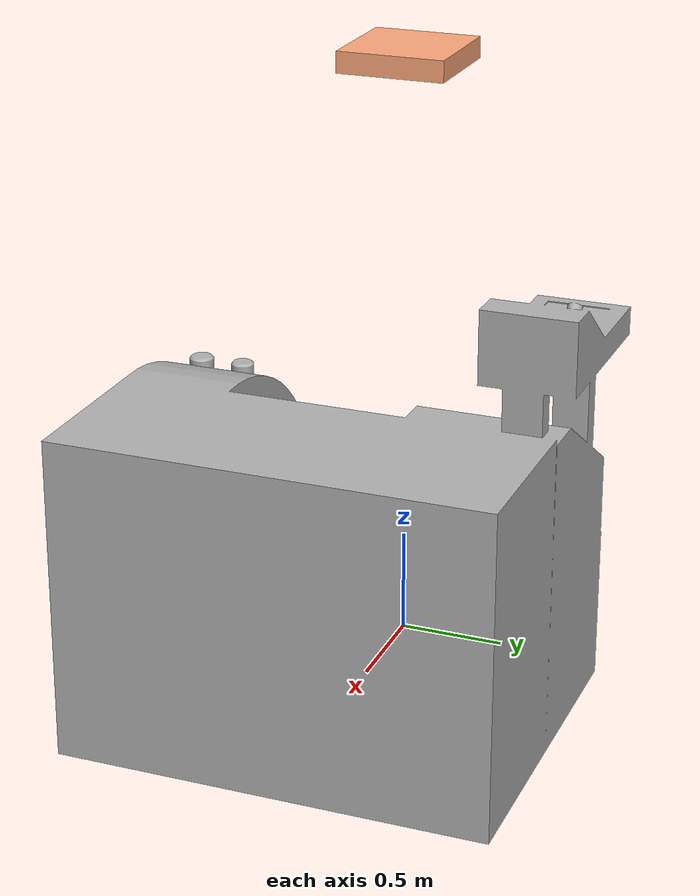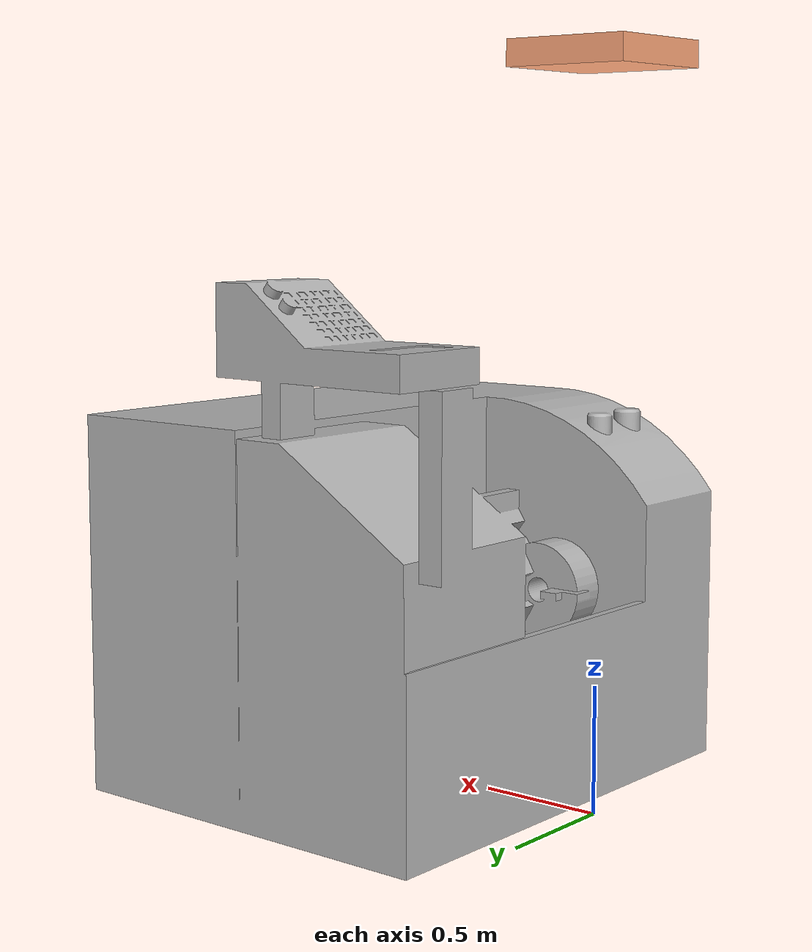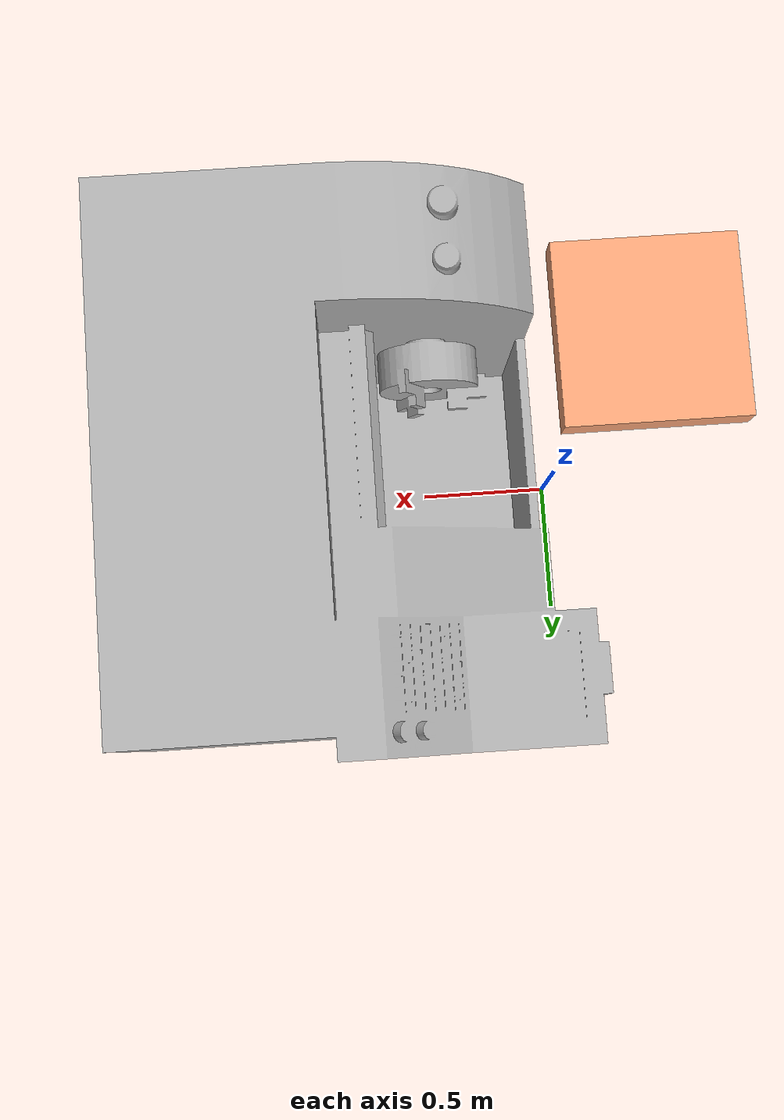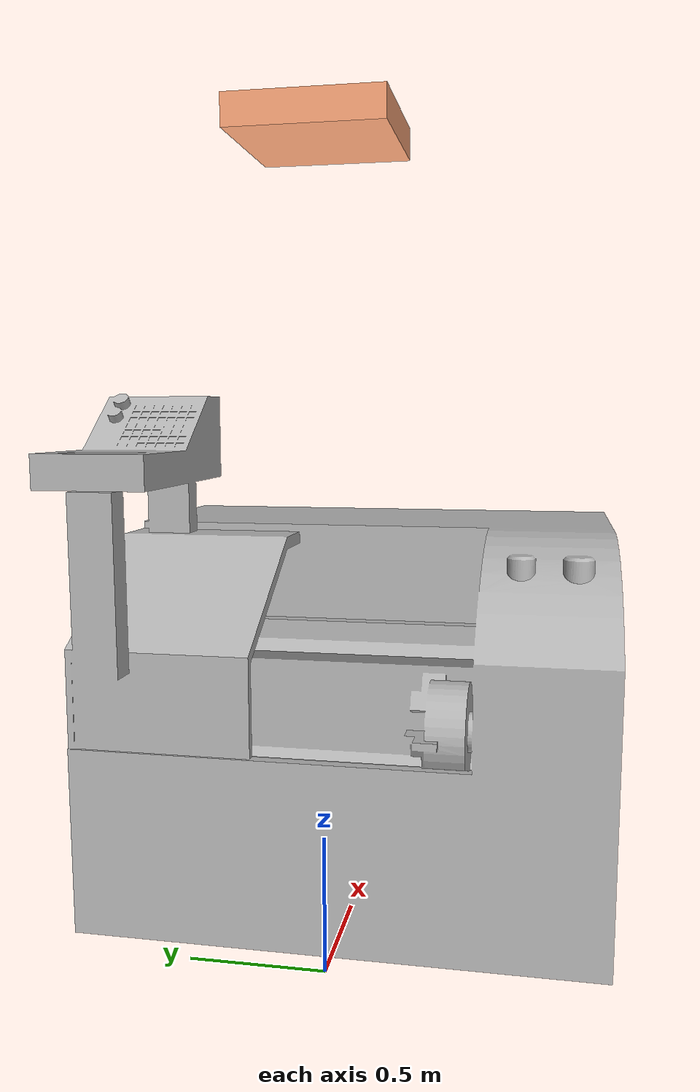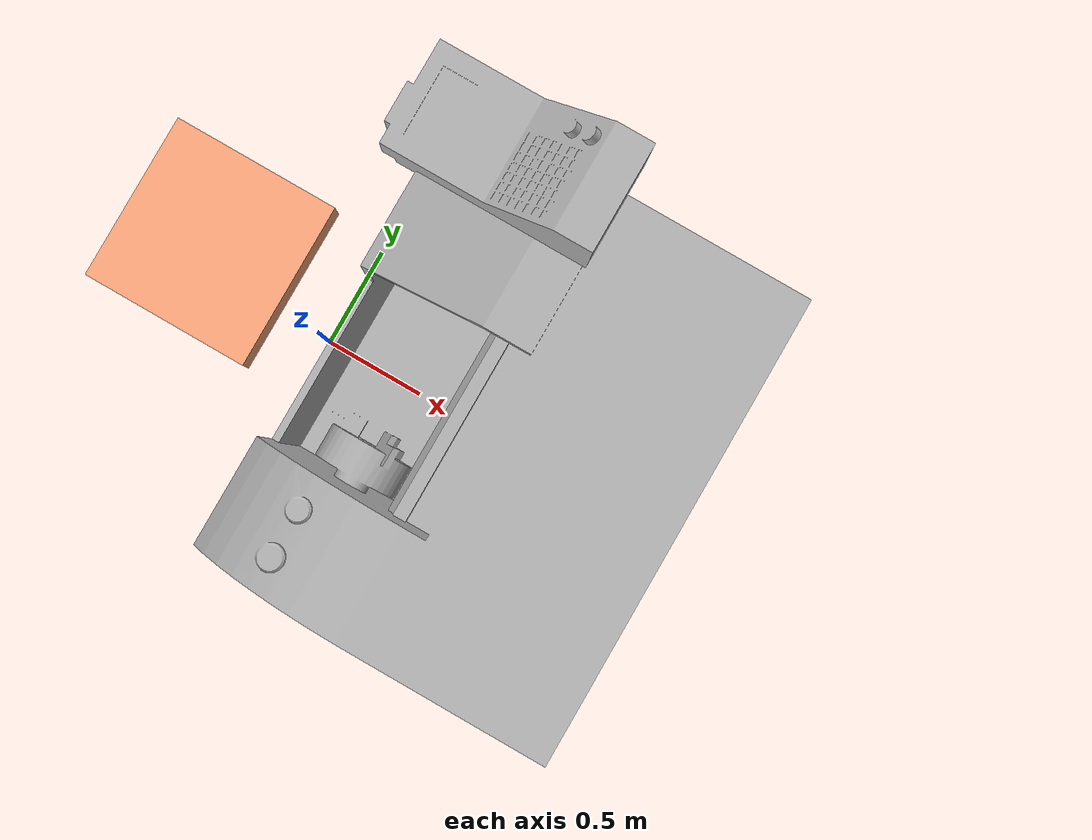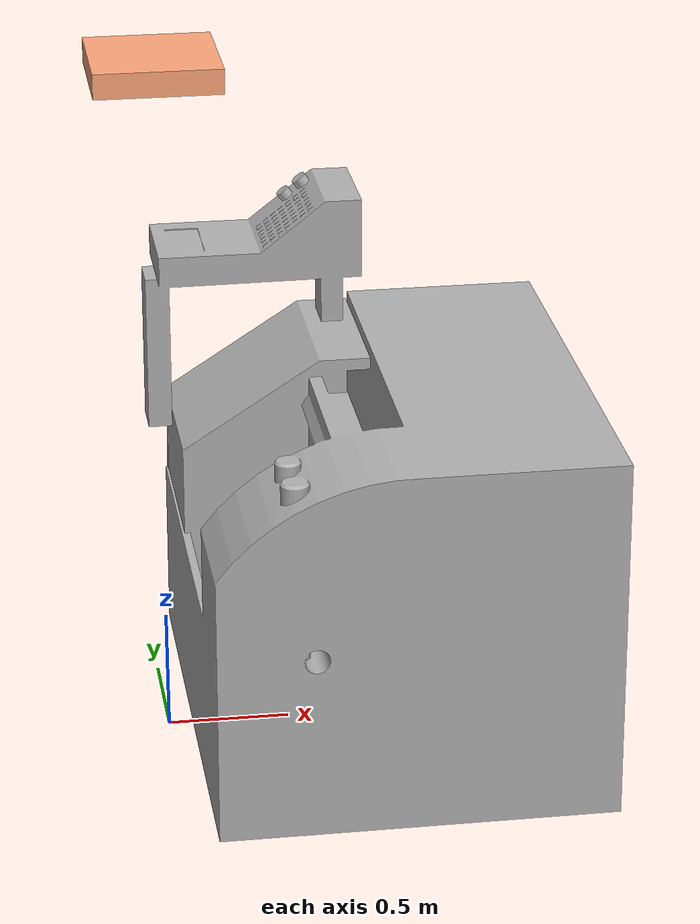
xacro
<?xml version="1.0" ?>
<robot name="NIST_Robot" xmlns:xacro="http://ros.org/wiki/xacro">

	<!-- parameters -->
	<xacro:property name="platform_thickness" value="0.1"/>

	<!-- color definitions -->
  <material name="blue">
    <color rgba="0 0 1 1"/>
  </material>
  <material name="yellow">
    <color rgba="1 1 0 1"/>
  </material>
  <material name="orange">
    <color rgba="1 0.66 0.48 1"/>
  </material>
  <material name="red">
    <color rgba="1 0 0 1"/>
  </material>
  <material name="light_blue">
    <color rgba="0.78 0.94 0.965 1"/>
  </material>
  <material name="light_gray">
    <color rgba="0.7 0.7 0.7 1"/>
  </material>

  <!-- robot definitions, also defined in robot urdf -->
	<link name="base_link"/>

	<!-- link definitions -->
	<link name="world_frame"/>
	<link name="robot_platform_link">
		<visual>
			<origin xyz="0.0 0.0 -${platform_thickness * 0.5}" rpy="0 0 0"/>
			<geometry>
				<box size="0.5 0.5 ${platform_thickness}"/>
			</geometry>
			<material name="orange"/>
		</visual>
	</link>
	<link name="cnc_link">
		<visual>
			<geometry>
                <mesh filename="package://mtconnect_example_launch/meshes/cnc_lathe.dae"/>
			</geometry>
			<material name="light_gray"/>
		</visual>
        <collision name="cnc_base">
            <geometry>
                <box size="2.0 1.6 0.7"/>
            </geometry>
            <origin xyz="1.0 0.8 0.35"/>
        </collision>
        <collision name="cnc_right_wall">
            <geometry>
                <box size="0.5 1.6 0.9"/>
            </geometry>
            <origin xyz="0.25 0.8 1.15"/>
        </collision>
        <collision name="cnc_left_wall">
            <geometry>
                <box size="0.75 1.6 0.9"/>
            </geometry>
            <origin xyz="1.625 0.8 1.15"/>
        </collision>
	</link>

	<!-- joint definitions -->
	<joint name="world_to_platform_joint" type ="fixed">
		<origin xyz="0 0 2.8" rpy="3.1417 0 0"/>
		<parent link="world_frame"/>
		<child link="robot_platform_link"/>
	</joint>
	<joint name="world_to_cnc_joint" type ="fixed">
		<origin xyz="1.7 -1.0 0.0" rpy="0 0 1.5708"/>
		<parent link="world_frame"/>
		<child link="cnc_link"/>
	</joint>
	<joint name="platform_to_base_joint" type ="fixed">
		<origin xyz="0 0 0" rpy="0 0 0"/>
		<parent link="robot_platform_link"/>
		<child link="base_link"/>
	</joint>

</robot>
